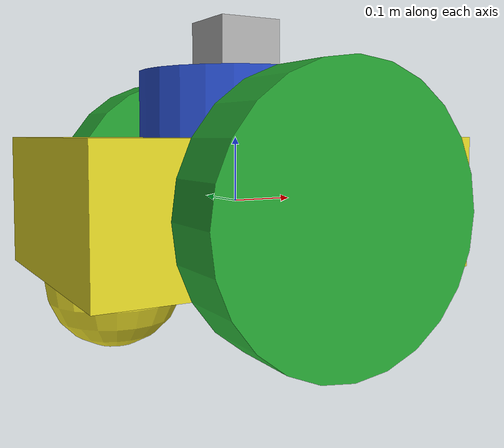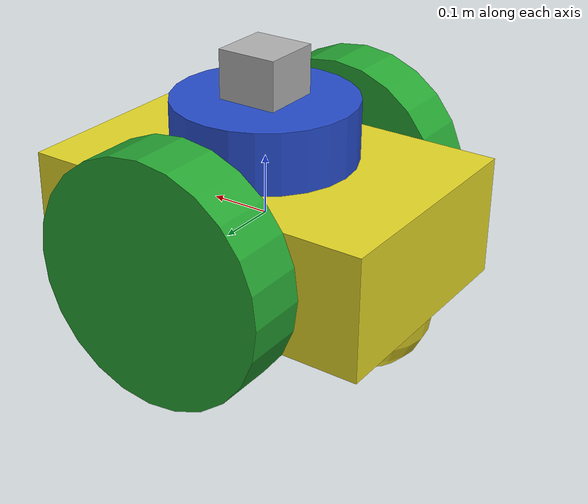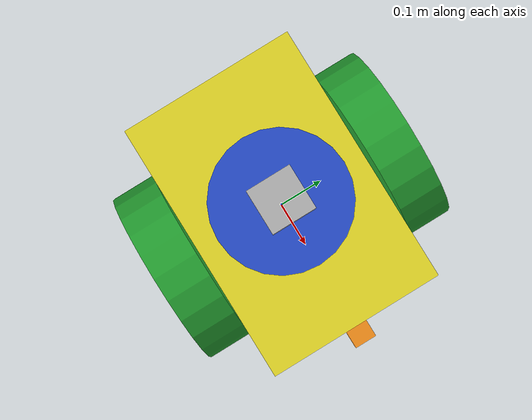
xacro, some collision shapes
<?xml version='1.0'?>

<robot name="my_robot" xmlns:xacro="http://www.ros.org/wiki/xacro">
<xacro:include filename="$(find my_robot)/urdf/my_robot.gazebo" />
  <link name="robot_footprint"></link>

  <joint name="robot_footprint_joint" type="fixed">
    <origin xyz="0 0 0" rpy="0 0 0" />
    <parent link="robot_footprint"/>
    <child link="chassis" />
  </joint>

  <link name='chassis'>
    <pose>0 0 0.1 0 0 0</pose>

    <inertial>
      <mass value="10.0"/>
      <origin xyz="0.0 0 0" rpy=" 0 0 0"/>
      <inertia
          ixx="0.1" ixy="0" ixz="0"
          iyy="0.1" iyz="0"
          izz="0.1"
      />
    </inertial>

    <collision name='collision'>
      <origin xyz="0 0 0" rpy=" 0 0 0"/>
      <geometry>
        <box size=".6 .4 .2"/>
      </geometry>
    </collision>

    <visual name='chassis_visual'>
      <origin xyz="0 0 0" rpy=" 0 0 0"/>
      <geometry>
        <box size=".6 .4 .2"/>
      </geometry>
    </visual>

    <collision name='back_caster_collision'>
      <origin xyz="-0.2 0 -0.1" rpy=" 0 0 0"/>
      <geometry>
        <sphere radius="0.0999"/>
      </geometry>
    </collision>

    <visual name='back_caster_visual'>
      <origin xyz="-0.2 0 -0.1" rpy=" 0 0 0"/>
      <geometry>
        <sphere radius="0.1"/>
      </geometry>
    </visual>

    <collision name='front_caster_collision'>
      <origin xyz="0.2 0 -0.1" rpy=" 0 0 0"/>
      <geometry>
        <sphere radius="0.0999"/>
      </geometry>
    </collision>

    <visual name='front_caster_visual'>
      <origin xyz="0.2 0 -0.1" rpy=" 0 0 0"/>
      <geometry>
        <sphere radius="0.1"/>
      </geometry>
    </visual>

  </link>

 <gazebo reference="chassis">
    <material>Gazebo/Yellow</material>
  </gazebo>

 <link name="right_wheel">

    <inertial>
      <origin xyz="0 0 0" rpy="0 1.5707 1.5707"/>
      <mass value="5"/>
      <inertia ixx="0.1" ixy="0" ixz="0" iyy="0.1" iyz="0" izz="0.1"/>
    </inertial>

    <visual>
      <origin xyz="0 0 0" rpy="0 1.5707 1.5707"/>
      <geometry>
        <cylinder length="0.1" radius="0.2"/>
      </geometry>
    </visual>

    <collision>
      <origin xyz="0 0 0" rpy="0 1.5707 1.5707"/>
      <geometry>
        <cylinder length="0.1" radius="0.2"/>
      </geometry>
    </collision>

  </link>
  <joint type="continuous" name="right_wheel_hinge">
    <origin xyz="0 -0.25 0" rpy="0 0 0"/>
    <child link="right_wheel"/>
    <parent link="chassis"/>
    <axis xyz="0 1 0" rpy="0 0 0"/>
    <limit effort="10000" velocity="1000"/>
    <dynamics damping="1.0" friction="1.0"/>
  </joint>
  <gazebo reference="right_wheel">
    <material>Gazebo/Green</material>
  </gazebo>

<link name="left_wheel">

    <inertial>
      <origin xyz="0 0 0" rpy="0 1.5707 1.5707"/>
      <mass value="5"/>
      <inertia ixx="0.1" ixy="0" ixz="0" iyy="0.1" iyz="0" izz="0.1"/>
    </inertial>

    <visual>
      <origin xyz="0 0 0" rpy="0 1.5707 1.5707"/>
      <geometry>
        <cylinder length="0.1" radius="0.2"/>
      </geometry>
    </visual>

    <collision>
      <origin xyz="0 0 0" rpy="0 1.5707 1.5707"/>
      <geometry>
        <cylinder length="0.1" radius="0.2"/>
      </geometry>
    </collision>

  </link>

<joint type="continuous" name="left_wheel_hinge">
    <origin xyz="0 0.25 0" rpy="0 0 0"/>
    <child link="left_wheel"/>
    <parent link="chassis"/>
    <axis xyz="0 1 0" rpy="0 0 0"/>
    <limit effort="10000" velocity="1000"/>
    <dynamics damping="1.0" friction="1.0"/>
  </joint>

 <gazebo reference="left_wheel">
    <material>Gazebo/Green</material>
  </gazebo>

<link name="head">

    <inertial>
      <origin xyz="0 0 0" rpy="0 0 0"/>
      <mass value="5"/>
      <inertia ixx="0.1" ixy="0" ixz="0" iyy="0.1" iyz="0" izz="0.1"/>
    </inertial>

    <visual>
      <origin xyz="0 0 0" rpy="0 0 0"/>
      <geometry>
        <cylinder length="0.1" radius="0.15"/>
      </geometry>
    </visual>

    <collision>
      <origin xyz="0 0 0" rpy="0 0 0"/>
      <geometry>
        <cylinder length="0.1" radius="0.15"/>
      </geometry>
    </collision>
 </link>

  <joint type="fixed" name="Head_joint">
    <origin xyz="0 0 0.15" rpy="0 0 0"/>
    <child link="head"/>
    <parent link="chassis"/>
    <axis xyz="0 1 0" rpy="0 0 0"/>
  </joint>

 <gazebo reference="head">
    <material>Gazebo/Blue</material>
  </gazebo>

<link name="camera">
    <inertial>
      <origin xyz="0 0 0" rpy="0 0 0"/>
      <mass value="0.1"/>
      <inertia ixx="1e-6" ixy="0" ixz="0" iyy="1e-6" iyz="0" izz="1e-6"/>
    </inertial>
    <visual>
      <origin xyz="0 0 0" rpy="0 0 0"/>
      <geometry>
        <box size=".05 .05 .05"/>
      </geometry>
    </visual>
    <collision>
      <origin xyz="0 0 0" rpy="0 0 0"/>
      <geometry>
        <box size=".05 .05 .05"/>
      </geometry>
    </collision>
  </link>

  <joint type="fixed" name="camera_joint">
    <origin xyz="0.32 0 0" rpy="0 0 0"/>
    <child link="camera"/>
    <parent link="chassis"/>
    <axis xyz="0 1 0" rpy="0 0 0"/>
  </joint>

 <!-- Add RGB-D camera -->
  <joint name="camera_optical_joint" type="fixed">
    <origin xyz="0 0 0" rpy="-1.5707 0 -1.5707"/>
    <parent link="camera"/>
    <child link="camera_link_optical"/>
  </joint>

  <link name="camera_link_optical">
  </link>

 <gazebo reference="camera">
    <material>Gazebo/Orange</material>
  </gazebo>

<link name="hokuyo">
    <inertial>
      <origin xyz="0 0 0" rpy="0 0 0"/>
      <mass value="1e-5"/>
      <inertia ixx="1e-6" ixy="0" ixz="0" iyy="1e-6" iyz="0" izz="1e-6"/>
    </inertial>
    <visual>
      <origin xyz="0 0 0" rpy="0 0 0"/>
      <geometry>
        <mesh filename="package://my_robot/meshes/hokuyo.dae"/>
      </geometry>
    </visual>
    <collision>
      <origin xyz="0 0 0" rpy="0 0 0"/>
      <geometry>
        <box size=".1 .1 .1"/>
      </geometry>
    </collision>
  </link>
  <joint type="fixed" name="hokuyo_joint">
    <origin xyz="0 0 0.23" rpy="0 0 0"/>
    <child link="hokuyo"/>
    <parent link="chassis"/>
    <axis xyz="0 1 0" rpy="0 0 0"/>
  </joint>

</robot>
